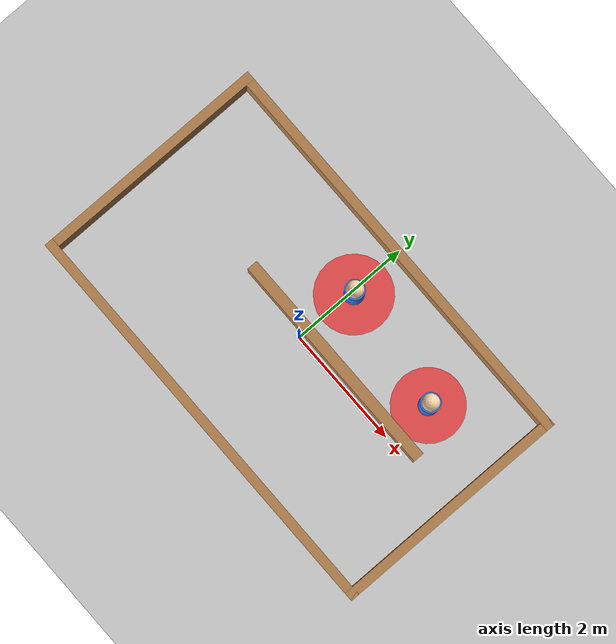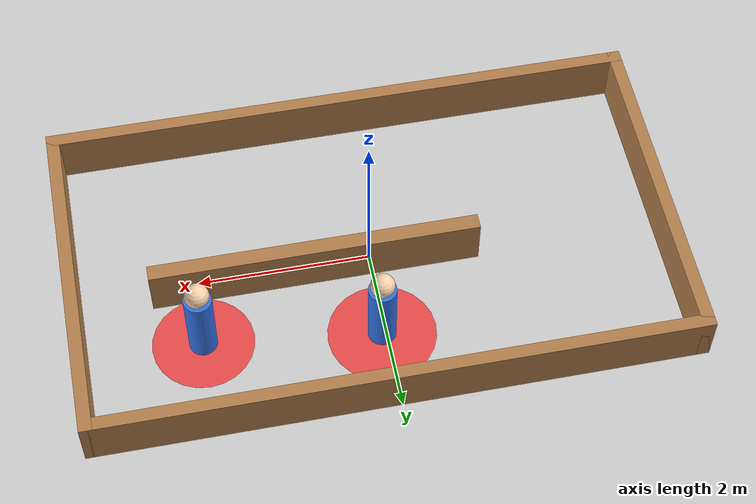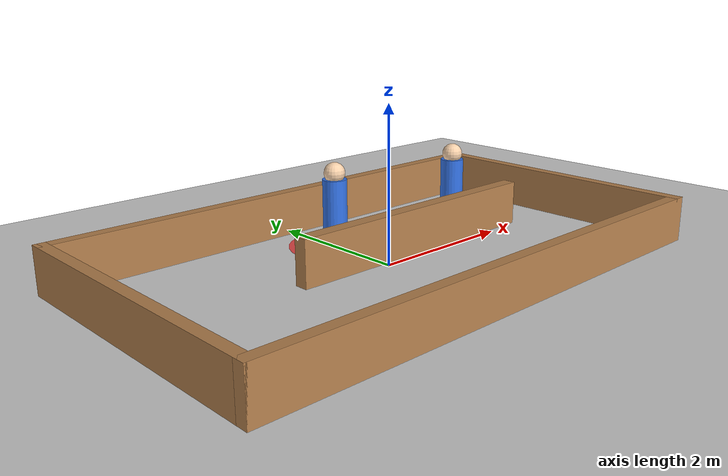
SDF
<?xml version="1.0"?>
<sdf version="1.6">
  <world name="default">

    <include>
      <uri>model://ground_plane</uri>
    </include>

    <include>
      <uri>model://sun</uri>
    </include>

    <scene>
      <shadows>false</shadows>
      <ambient>0.75 0.75 0.75 1.0</ambient>
      <background>0.96 0.96 0.96 1.0</background>
    </scene>

    <gui fullscreen='0'>
      <camera name='user_camera'>
        <pose frame=''>0.2 0.0 11.5 0 1.52 0</pose>
        <view_controller>orbit</view_controller>
        <projection_type>perspective</projection_type>
      </camera>
    </gui>

    <physics type="ode">
      <real_time_update_rate>0</real_time_update_rate>
      <max_step_size>0.001</max_step_size>
      <real_time_factor>0</real_time_factor>
      <ode>
        <solver>
          <type>quick</type>
          <iters>150</iters>
          <precon_iters>0</precon_iters>
          <sor>1.400000</sor>
          <use_dynamic_moi_rescaling>1</use_dynamic_moi_rescaling>
        </solver>
        <constraints>
          <cfm>0.00001</cfm>
          <erp>0.2</erp>
          <contact_max_correcting_vel>2000.000000</contact_max_correcting_vel>
          <contact_surface_layer>0.01000</contact_surface_layer>
        </constraints>
      </ode>
    </physics>

    <model name='penalty_corridor_shell'>
      <static>true</static>

      <link name='top_wall'>
        <collision name='top_wall_collision'>
          <pose>0 0 0.3 0 0 0</pose>
          <geometry>
            <box>
              <size>7.0 0.15 0.6</size>
            </box>
          </geometry>
        </collision>
        <visual name='top_wall_visual'>
          <pose>0 0 0.3 0 0 0</pose>
          <geometry>
            <box>
              <size>7.0 0.15 0.6</size>
            </box>
          </geometry>
          <material>
            <script>
              <uri>file://media/materials/scripts/gazebo.material</uri>
              <name>Gazebo/Wood</name>
            </script>
            <ambient>1 1 1 1</ambient>
          </material>
        </visual>
        <pose>0 1.925 0 0 0 0</pose>
      </link>

      <link name='bottom_wall'>
        <collision name='bottom_wall_collision'>
          <pose>0 0 0.3 0 0 0</pose>
          <geometry>
            <box>
              <size>7.0 0.15 0.6</size>
            </box>
          </geometry>
        </collision>
        <visual name='bottom_wall_visual'>
          <pose>0 0 0.3 0 0 0</pose>
          <geometry>
            <box>
              <size>7.0 0.15 0.6</size>
            </box>
          </geometry>
          <material>
            <script>
              <uri>file://media/materials/scripts/gazebo.material</uri>
              <name>Gazebo/Wood</name>
            </script>
            <ambient>1 1 1 1</ambient>
          </material>
        </visual>
        <pose>0 -1.925 0 0 0 0</pose>
      </link>

      <link name='left_wall'>
        <collision name='left_wall_collision'>
          <pose>0 0 0.3 0 0 0</pose>
          <geometry>
            <box>
              <size>4.0 0.15 0.6</size>
            </box>
          </geometry>
        </collision>
        <visual name='left_wall_visual'>
          <pose>0 0 0.3 0 0 0</pose>
          <geometry>
            <box>
              <size>4.0 0.15 0.6</size>
            </box>
          </geometry>
          <material>
            <script>
              <uri>file://media/materials/scripts/gazebo.material</uri>
              <name>Gazebo/Wood</name>
            </script>
            <ambient>1 1 1 1</ambient>
          </material>
        </visual>
        <pose>-3.425 0 0 0 0 1.5708</pose>
      </link>

      <link name='right_wall'>
        <collision name='right_wall_collision'>
          <pose>0 0 0.3 0 0 0</pose>
          <geometry>
            <box>
              <size>4.0 0.15 0.6</size>
            </box>
          </geometry>
        </collision>
        <visual name='right_wall_visual'>
          <pose>0 0 0.3 0 0 0</pose>
          <geometry>
            <box>
              <size>4.0 0.15 0.6</size>
            </box>
          </geometry>
          <material>
            <script>
              <uri>file://media/materials/scripts/gazebo.material</uri>
              <name>Gazebo/Wood</name>
            </script>
            <ambient>1 1 1 1</ambient>
          </material>
        </visual>
        <pose>3.425 0 0 0 0 1.5708</pose>
      </link>

      <link name='central_divider'>
        <collision name='central_divider_collision'>
          <pose>0 0 0.3 0 0 0</pose>
          <geometry>
            <box>
              <size>3.8 0.18 0.6</size>
            </box>
          </geometry>
        </collision>
        <visual name='central_divider_visual'>
          <pose>0 0 0.3 0 0 0</pose>
          <geometry>
            <box>
              <size>3.8 0.18 0.6</size>
            </box>
          </geometry>
          <material>
            <script>
              <uri>file://media/materials/scripts/gazebo.material</uri>
              <name>Gazebo/Wood</name>
            </script>
            <ambient>1 1 1 1</ambient>
          </material>
        </visual>
        <pose>0.65 0.15 0 0 0 0</pose>
      </link>
    </model>

    <model name='human_shortcut'>
      <static>true</static>
      <pose>0.05 1.05 0 0 0 0</pose>
      <link name='body'>
        <collision name='body_collision'>
          <pose>0 0 0.45 0 0 0</pose>
          <geometry>
            <cylinder>
              <radius>0.16</radius>
              <length>0.9</length>
            </cylinder>
          </geometry>
        </collision>
        <visual name='body_visual'>
          <pose>0 0 0.45 0 0 0</pose>
          <geometry>
            <cylinder>
              <radius>0.16</radius>
              <length>0.9</length>
            </cylinder>
          </geometry>
          <material>
            <ambient>0.2 0.45 0.9 1.0</ambient>
            <diffuse>0.2 0.45 0.9 1.0</diffuse>
          </material>
        </visual>
        <visual name='head_visual'>
          <pose>0 0 0.98 0 0 0</pose>
          <geometry>
            <sphere>
              <radius>0.14</radius>
            </sphere>
          </geometry>
          <material>
            <ambient>0.98 0.83 0.68 1.0</ambient>
            <diffuse>0.98 0.83 0.68 1.0</diffuse>
          </material>
        </visual>
      </link>
    </model>

    <model name='human_goal_guard'>
      <static>true</static>
      <pose>2.05 0.8 0 0 0 0</pose>
      <link name='body'>
        <collision name='body_collision'>
          <pose>0 0 0.45 0 0 0</pose>
          <geometry>
            <cylinder>
              <radius>0.16</radius>
              <length>0.9</length>
            </cylinder>
          </geometry>
        </collision>
        <visual name='body_visual'>
          <pose>0 0 0.45 0 0 0</pose>
          <geometry>
            <cylinder>
              <radius>0.16</radius>
              <length>0.9</length>
            </cylinder>
          </geometry>
          <material>
            <ambient>0.2 0.45 0.9 1.0</ambient>
            <diffuse>0.2 0.45 0.9 1.0</diffuse>
          </material>
        </visual>
        <visual name='head_visual'>
          <pose>0 0 0.98 0 0 0</pose>
          <geometry>
            <sphere>
              <radius>0.14</radius>
            </sphere>
          </geometry>
          <material>
            <ambient>0.98 0.83 0.68 1.0</ambient>
            <diffuse>0.98 0.83 0.68 1.0</diffuse>
          </material>
        </visual>
      </link>
    </model>

    <model name='shortcut_keepout'>
      <static>true</static>
      <pose>0.05 1.05 0 0 0 0</pose>
      <link name='zone'>
        <visual name='zone_visual'>
          <pose>0 0 0.003 0 0 0</pose>
          <geometry>
            <cylinder>
              <radius>0.62</radius>
              <length>0.006</length>
            </cylinder>
          </geometry>
          <transparency>0.3</transparency>
          <material>
            <ambient>1.0 0.12 0.12 1.0</ambient>
            <diffuse>1.0 0.12 0.12 1.0</diffuse>
          </material>
        </visual>
      </link>
    </model>

    <model name='goal_guard_keepout'>
      <static>true</static>
      <pose>2.05 0.8 0 0 0 0</pose>
      <link name='zone'>
        <visual name='zone_visual'>
          <pose>0 0 0.003 0 0 0</pose>
          <geometry>
            <cylinder>
              <radius>0.58</radius>
              <length>0.006</length>
            </cylinder>
          </geometry>
          <transparency>0.3</transparency>
          <material>
            <ambient>1.0 0.12 0.12 1.0</ambient>
            <diffuse>1.0 0.12 0.12 1.0</diffuse>
          </material>
        </visual>
      </link>
    </model>

  </world>
</sdf>
